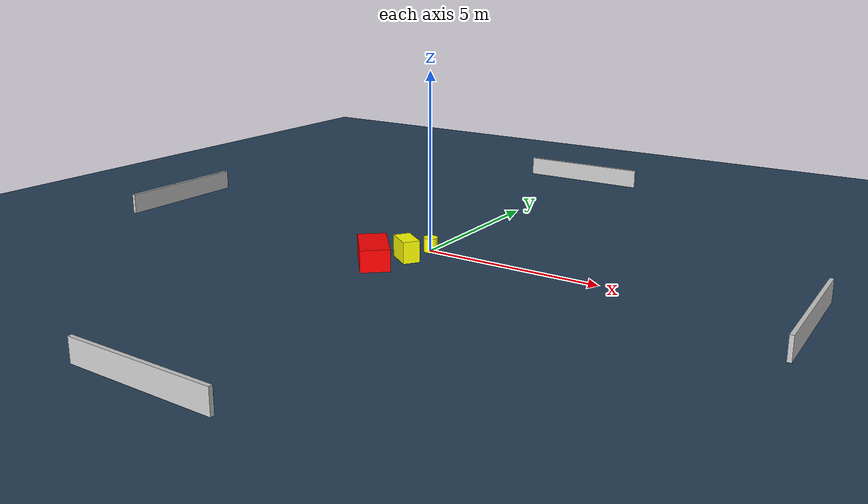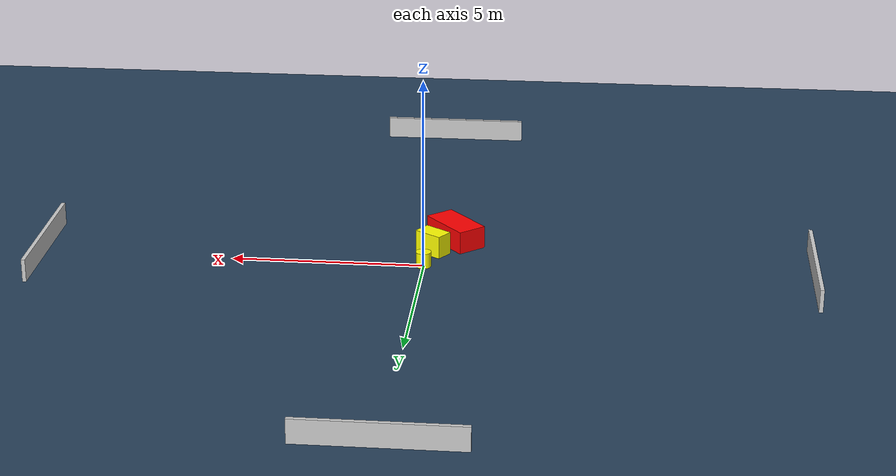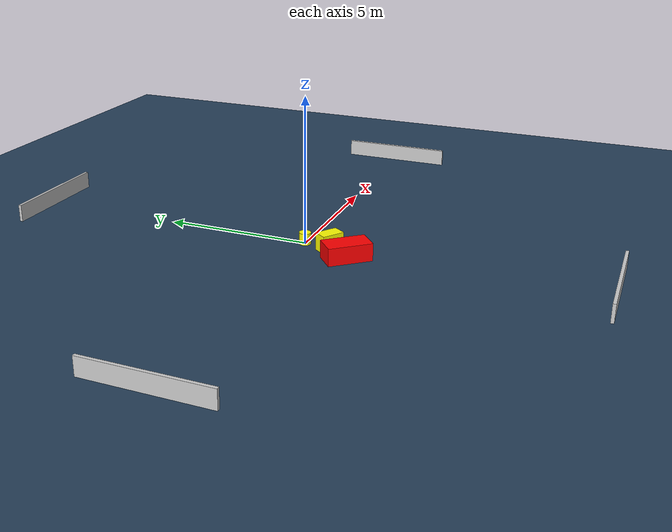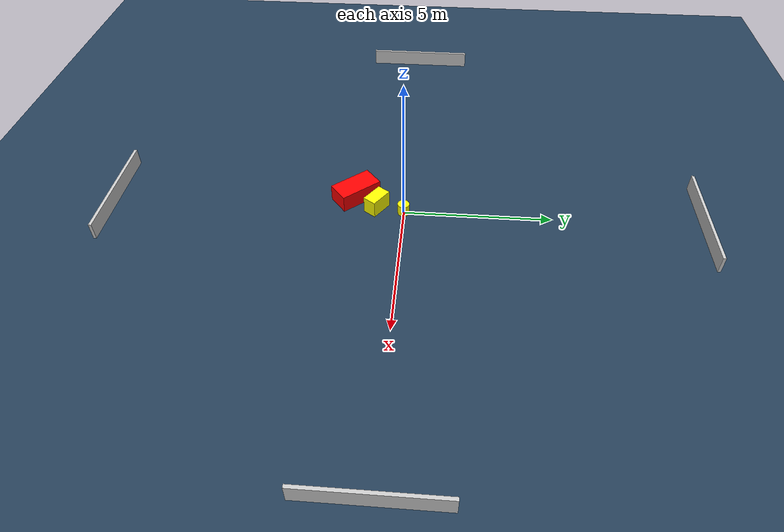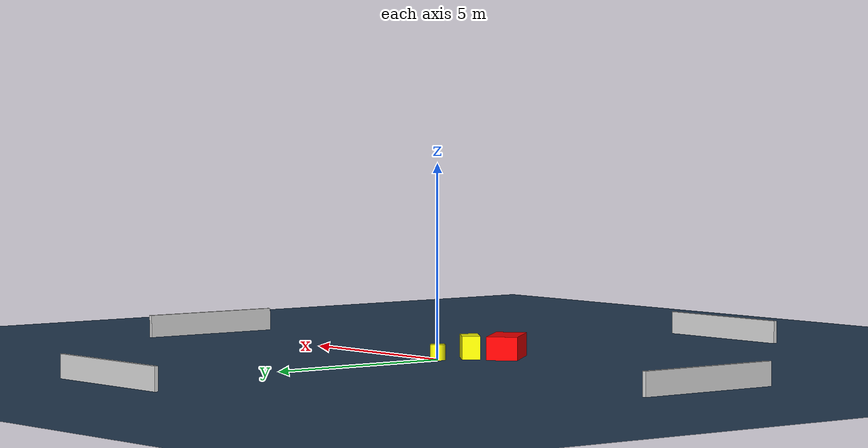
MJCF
<?xml version="1.0" ?>
<mujoco model="generated_environment">
  <option timestep="0.01" integrator="RK4" cone="elliptic"/>
  <default>
    <geom density="1"/>
  </default>
  <asset>
    <texture builtin="gradient" height="3072" name="skybox" rgb1="0.3 0.5 0.7" rgb2="0 0 0" type="skybox" width="512"/>
    <texture builtin="checker" height="300" name="groundplane" rgb1="0.2 0.3 0.4" rgb2="0.1 0.2 0.3" type="2d" width="300"/>
    <material name="groundplane" reflectance="0.2" texrepeat="5 5" texture="groundplane"/>
  </asset>
  <worldbody>
    <light dir="0 0 -1" directional="true" pos="0 0 1.5"/>
    <geom condim="3" friction="0.5 0.005 0.001" material="groundplane" name="floor" pos="0 0 0" size="0 0 0.05" type="plane"/>
    <body name="walls">
      <geom name="wall_1" condim="4" pos="-10.0 0.0 0.3" rgba="0.800000011920929 0.800000011920929 0.800000011920929 1.0" size="0.05 2.0 0.3" type="box"/>
      <geom name="wall_2" condim="4" pos="10.0 0.0 0.3" rgba="0.800000011920929 0.800000011920929 0.800000011920929 1.0" size="0.05 2.0 0.3" type="box"/>
      <geom name="wall_3" condim="4" pos="0.0 -10.0 0.3" rgba="0.800000011920929 0.800000011920929 0.800000011920929 1.0" size="2.0 0.05 0.3" type="box"/>
      <geom name="wall_4" condim="4" pos="0.0 10.0 0.3" rgba="0.800000011920929 0.800000011920929 0.800000011920929 1.0" size="2.0 0.05 0.3" type="box"/>
    </body>
    <body name="robot">
      <joint name="joint_x" type="slide" pos="0 0 0" axis="1 0 0"/>
      <joint name="joint_y" type="slide" pos="0 0 0" axis="0 1 0"/>
      <geom name="robot" type="cylinder" pos="0.0 0.0 0.2" size="0.2 0.2 0.0" mass="5.0" friction="1.0 0.005 0.0001" condim="4" rgba="1.0 1.0 0.0 1.0"/>
    </body>
    <body name="obstacle_1_movable">
      <geom name="obstacle_1_movable" condim="4" pos="-0.16257841476606905 -0.9310455867241723 0.3" euler="0 0 235.30241085499574" friction="0.0 0.005 0.001" rgba="1.0 1.0 0.0 1.0" size="0.23553559441029698 0.3920759811113204 0.3" type="box" mass="0.1"/>
      <joint type="free"/>
    </body>
    <body name="obstacle_2_static">
      <geom name="obstacle_2_static" condim="4" pos="-0.6910677376175017 -1.7117581509268334 0.3" euler="0 0 130.47509981608442" friction="0.0 0.005 0.001" rgba="1.0 0.0 0.0 1.0" size="0.7490043245031786 0.39697725508696935 0.3" type="box"/>
    </body>
  </worldbody>
  <actuator>
    <motor name="actuator_x" joint="joint_x" gear="1" ctrlrange="-1 1"/>
    <motor name="actuator_y" joint="joint_y" gear="1" ctrlrange="-1 1"/>
  </actuator>
</mujoco>
